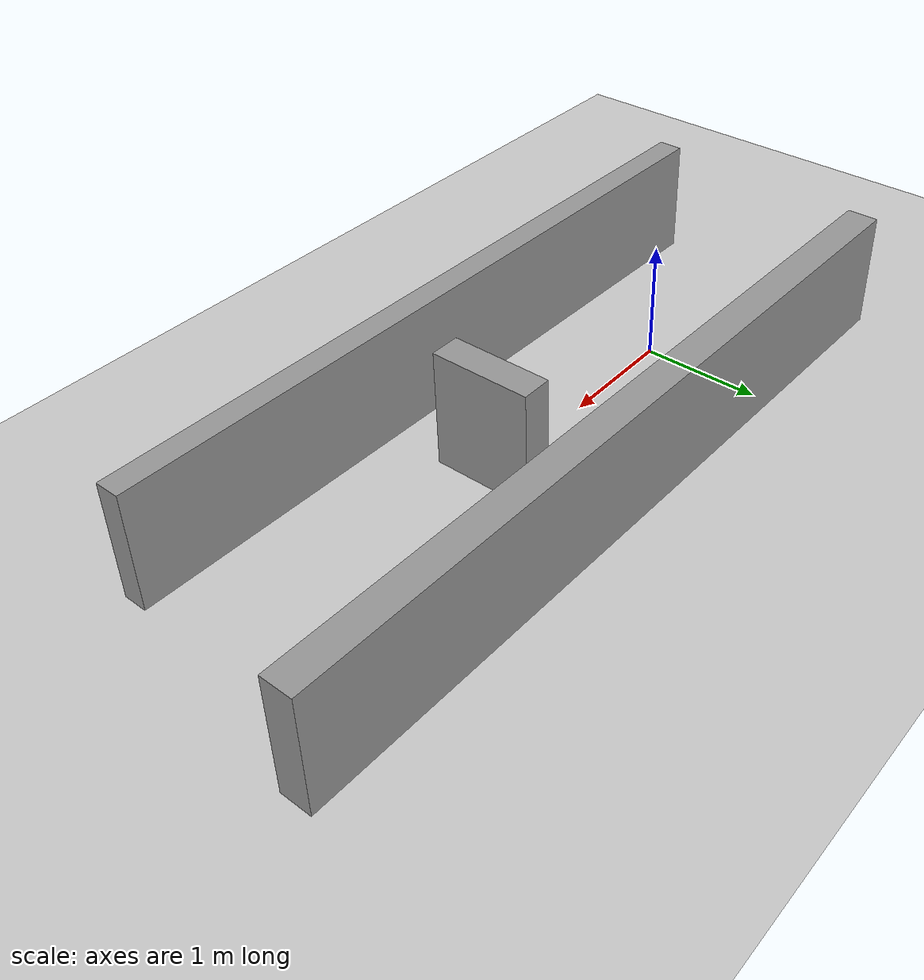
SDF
<sdf version="1.6">
 <world name="default">
  <scene><ambient>0.4 0.4 0.4 1</ambient><background>0.7 0.7 0.7 1</background><shadows>1</shadows></scene>
  <light name="sun" type="directional">
   <pose>0 0 10 0 -0 0</pose>
   <diffuse>0.8 0.8 0.8 1</diffuse>
   <specular>0.2 0.2 0.2 1</specular>
   <attenuation>
    <range>1000</range>
    <constant>0.9</constant>
    <linear>0.01</linear>
    <quadratic>0.001</quadratic>
   </attenuation>
   <direction>-0.5 0.1 -0.9</direction>
  </light>
  <model name="ground_plane">
   <static>1</static>
   <link name="link">
    <collision name="collision">
     <geometry><plane><normal>0 0 1</normal><size>100 100</size></plane></geometry>
     <surface><friction><ode><mu>100</mu><mu2>50</mu2></ode></friction></surface>
    </collision>
    <visual name="visual">
     <cast_shadows>0</cast_shadows>
     <geometry><plane><normal>0 0 1</normal><size>100 100</size></plane></geometry>
     <material>
      <script><uri>file://media/materials/scripts/gazebo.material</uri><name>Gazebo/Grey</name></script>
     </material>
    </visual>
   </link>
  </model>
  <physics name="default_physics" default="0" type="ode">
   <real_time_update_rate>1000</real_time_update_rate>
   <max_step_size>0.001</max_step_size>
   <real_time_factor>1</real_time_factor>
   <ode>
    <solver>
     <type>quick</type>
     <iters>150</iters>
     <precon_iters>0</precon_iters>
     <sor>1.4</sor>
     <use_dynamic_moi_rescaling>1</use_dynamic_moi_rescaling>
    </solver>
    <constraints>
     <cfm>1e-05</cfm>
     <erp>0.2</erp>
     <contact_max_correcting_vel>2000</contact_max_correcting_vel>
     <contact_surface_layer>0.01</contact_surface_layer>
    </constraints>
   </ode>
  </physics>
  <gravity>0 0 -9.8</gravity>
  <magnetic_field>6e-06 2.3e-05 -4.2e-05</magnetic_field>
  <atmosphere type="adiabatic"/>
  <audio><device>default</device></audio>
  <spherical_coordinates>
   <surface_model>EARTH_WGS84</surface_model>
   <latitude_deg>0</latitude_deg>
   <longitude_deg>0</longitude_deg>
   <elevation>0</elevation>
   <heading_deg>0</heading_deg>
  </spherical_coordinates>
  <model name="unit_box">
   <pose>1.72062 1 0.492897 1.8e-05 -0.00217 -0.008365</pose>
   <link name="link">
    <inertial>
     <mass>1</mass>
     <inertia>
      <ixx>0.166667</ixx>
      <ixy>0</ixy>
      <ixz>0</ixz>
      <iyy>0.166667</iyy>
      <iyz>0</iyz>
      <izz>0.166667</izz>
     </inertia>
    </inertial>
    <collision name="collision"><geometry><box><size>6.55355 0.262328 1</size></box></geometry></collision>
    <visual name="visual">
     <geometry><box><size>6.55355 0.262328 1</size></box></geometry>
     <material>
      <script><name>Gazebo/Grey</name><uri>file://media/materials/scripts/gazebo.material</uri></script>
     </material>
    </visual>
   </link>
  </model>
  <model name="unit_box_0">
   <pose>1.45403 -1 0.494394 2.1e-05 -0.001808 -0.011408</pose>
   <link name="link">
    <inertial>
     <mass>1</mass>
     <inertia>
      <ixx>0.166667</ixx>
      <ixy>0</ixy>
      <ixz>0</ixz>
      <iyy>0.166667</iyy>
      <iyz>0</iyz>
      <izz>0.166667</izz>
     </inertia>
    </inertial>
    <collision name="collision"><geometry><box><size>6.21055 0.205971 1</size></box></geometry></collision>
    <visual name="visual">
     <geometry><box><size>6.21055 0.205971 1</size></box></geometry>
     <material>
      <script><name>Gazebo/Grey</name><uri>file://media/materials/scripts/gazebo.material</uri></script>
     </material>
    </visual>
   </link>
  </model>
  <model name="unit_box_1">
   <pose>2.06915 -0.00682 0.5 0 -0 0</pose>
   <link name="link">
    <inertial>
     <mass>1</mass>
     <inertia>
      <ixx>0.166667</ixx>
      <ixy>0</ixy>
      <ixz>0</ixz>
      <iyy>0.166667</iyy>
      <iyz>0</iyz>
      <izz>0.166667</izz>
     </inertia>
    </inertial>
    <collision name="collision"><geometry><box><size>0.252649 0.848196 1</size></box></geometry></collision>
    <visual name="visual">
     <geometry><box><size>0.252649 0.848196 1</size></box></geometry>
     <material>
      <script><name>Gazebo/Grey</name><uri>file://media/materials/scripts/gazebo.material</uri></script>
     </material>
    </visual>
   </link>
  </model>
 </world>
</sdf>
